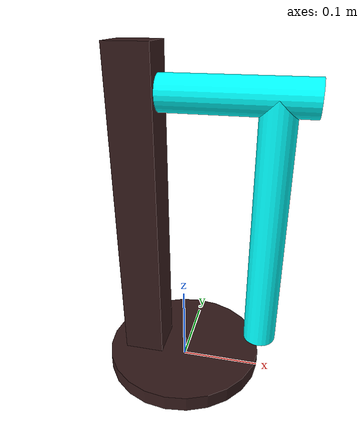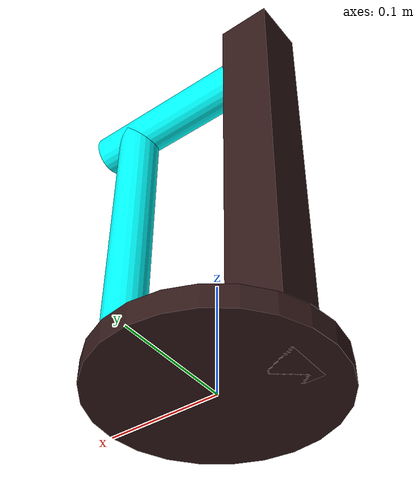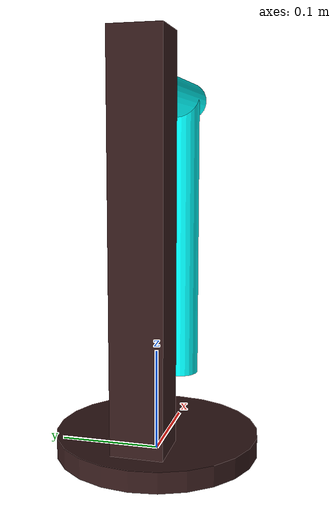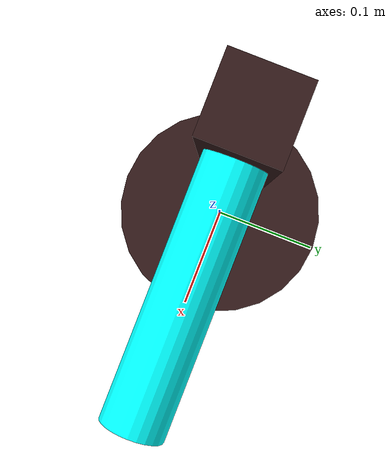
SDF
<?xml version="1.0" encoding="UTF-8"?>
<sdf version="1.11">
  <model name="pendulum">
    <link name="base">
      <inertial auto="true"/>
      <visual name="vis_plate_on_ground">
        <pose>0 0 0.01 0 0 0</pose>
        <geometry>
          <cylinder>
            <radius>0.1</radius>
            <length>0.02</length>
          </cylinder>
        </geometry>
        <material>
          <diffuse>0.2 0.1 0.1</diffuse>
          <specular>0.2 0.2 0.2</specular>
        </material>
      </visual>
      <visual name="vis_pole">
        <pose>-0.05 0 0.2 0 0 0</pose>
        <geometry>
          <box>
            <size>0.05 0.05 0.4</size>
          </box>
        </geometry>
        <material>
          <diffuse>0.2 0.1 0.1</diffuse>
          <specular>0.2 0.2 0.2</specular>
        </material>
      </visual>
      <collision name="col_plate_on_ground">
        <density>1</density>
        <pose>0 0 0.01 0 0 0</pose>
        <geometry>
          <cylinder>
            <radius>0.1</radius>
            <length>0.02</length>
          </cylinder>
        </geometry>
      </collision>
      <collision name="col_pole">
        <density>1000</density>
        <pose>-0.05 0 0.2 0 0 0</pose>
        <geometry>
          <box>
            <size>0.05 0.05 0.4</size>
          </box>
        </geometry>
      </collision>
    </link>

    <!-- upper link, length 1, IC -90 degrees -->
    <link name="upper_link">
      <pose>0 0 0.35 3.1415 0 0</pose>
      <self_collide>0</self_collide>
      <inertial auto="true"/>
      <visual name="vis_upper_joint">
        <pose>0.04 0 0 0 1.5708 0</pose>
        <geometry>
          <cylinder>
            <radius>0.02</radius>
            <length>0.2</length>
          </cylinder>
        </geometry>
        <material>
          <diffuse>0.0 1.0 1.0</diffuse>
          <specular>1.0 1.0 1.0</specular>
        </material>
      </visual>
      <visual name="vis_cylinder">
        <pose>0.1 0 0.15 0 0 0</pose>
        <geometry>
          <cylinder>
            <radius>0.02</radius>
            <length>0.3</length>
          </cylinder>
        </geometry>
        <material>
          <diffuse>0.0 1.0 1.0</diffuse>
          <specular>1.0 1.0 1.0</specular>
        </material>
      </visual>
      <collision name="col_upper_joint">
        <density>1000</density>
        <pose>0.04 0 0 0 1.5708 0</pose>
        <geometry>
          <cylinder>
            <radius>0.02</radius>
            <length>0.2</length>
          </cylinder>
        </geometry>
      </collision>
      <collision name="col_cylinder">
        <density>1000</density>
        <pose>0.1 0 0.15 0 0 0</pose>
        <geometry>
          <cylinder>
            <radius>0.02</radius>
            <length>0.3</length>
          </cylinder>
        </geometry>
      </collision>
    </link>

    <!-- pin joint for upper link, at origin of upper link -->
    <joint name="upper_joint" type="revolute">
      <parent>base</parent>
      <child>upper_link</child>
      <axis>
        <xyz>1.0 0 0</xyz>
      </axis>
    </joint>

    <joint name="fix_to_world" type="fixed">
      <parent>world</parent>
      <child>base</child>
    </joint>
  </model>
</sdf>
